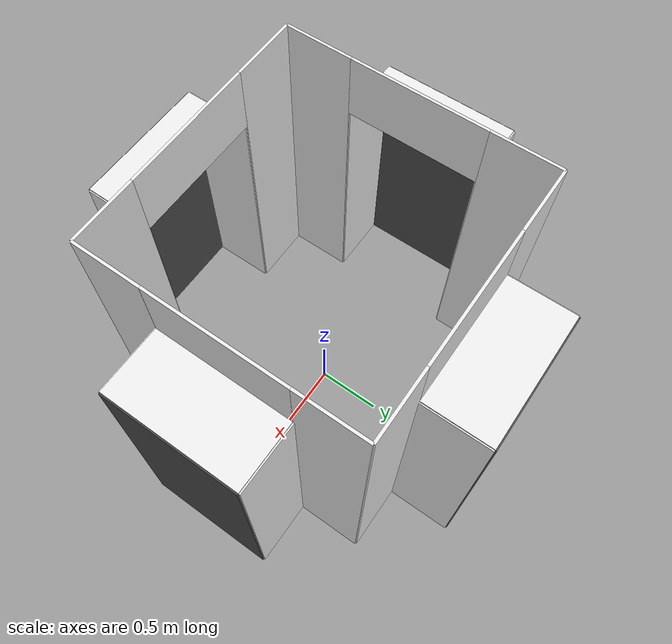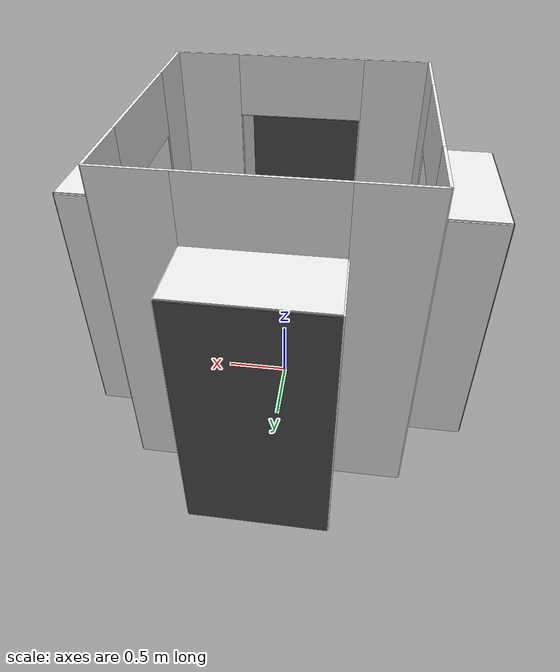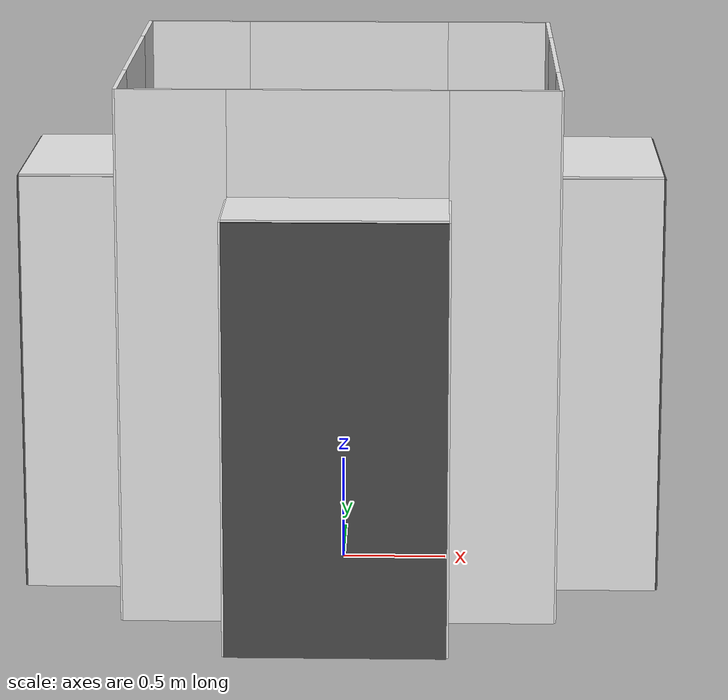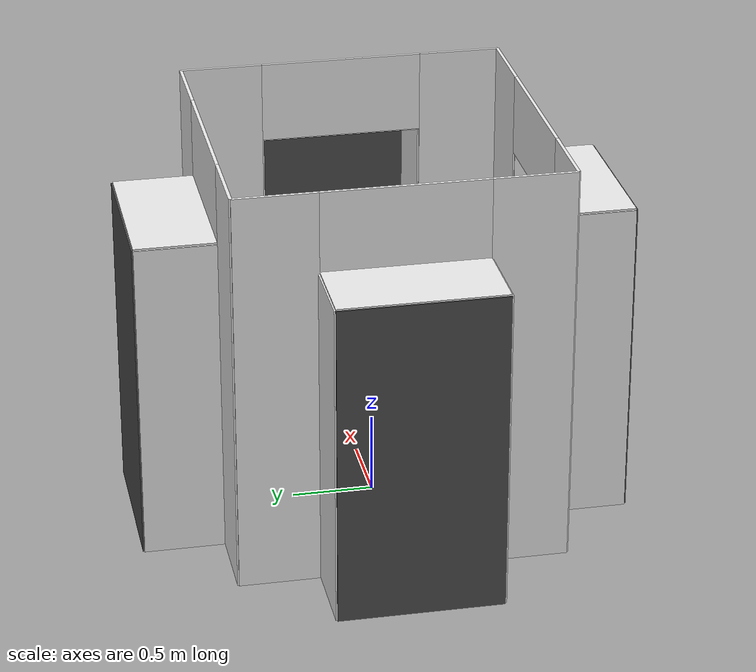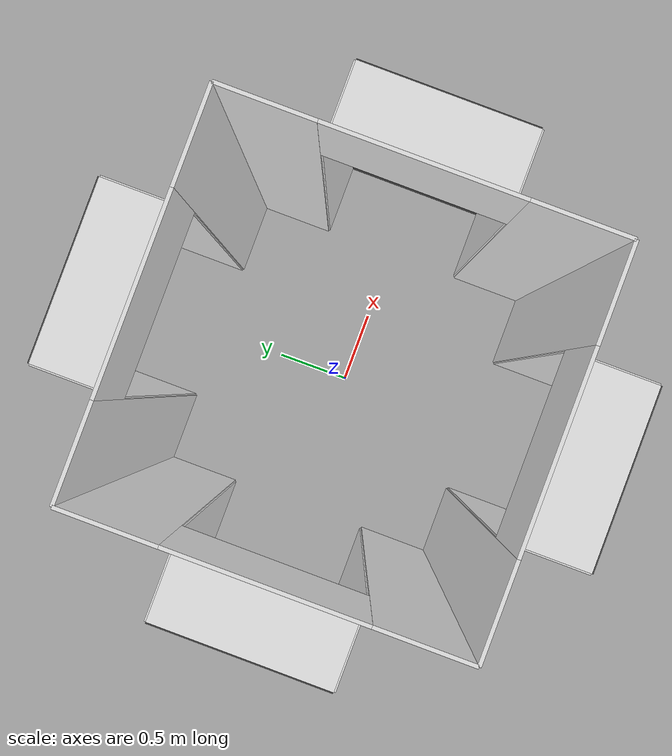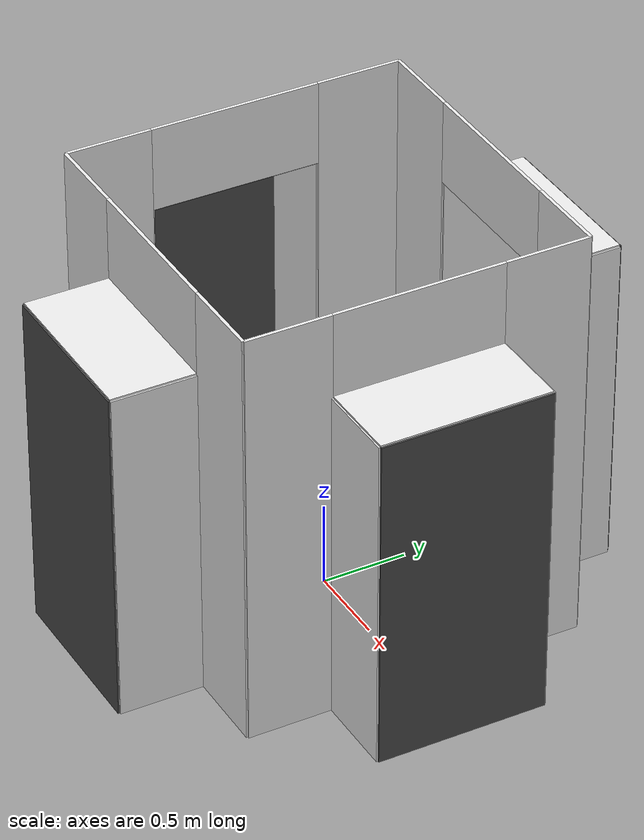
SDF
<?xml version='1.0' encoding='us-ascii'?>
<sdf version='1.6'>
  <world name='default'>
    <gravity>0 0 -9.8</gravity>
    <magnetic_field>6e-06 2.3e-05 -4.2e-05</magnetic_field>
    <atmosphere type='adiabatic'/>
    <physics name='default_physics' default='0' type='ode'>
      <max_step_size>0.001</max_step_size>
      <real_time_factor>1</real_time_factor>
      <real_time_update_rate>1000</real_time_update_rate>
    </physics>
    <scene>
      <ambient>0.4 0.4 0.4 1</ambient>
      <background>0.7 0.7 0.7 1</background>
      <shadows>0</shadows>
    </scene>
    <gui fullscreen='0'>
      <camera name='user_camera'>
        <pose frame=''>0.385465 11.2025 2.48268 0 0.225797 -1.50121</pose>
        <view_controller>orbit</view_controller>
        <projection_type>perspective</projection_type>
      </camera>
    </gui>
    <model name='wall_right_front_left'>
      <static>1</static>
      <pose frame=''>1 0.75 1.25 0 0 1.57</pose>
      <link name='link'>
        <collision name='collision'>
          <geometry>
            <box>
              <size>0.5 0.02 2.5</size>
            </box>
          </geometry>
        </collision>
        <visual name='visual'>
          <material>
            <script>
              <name>Gazebo/White</name>
              <uri>file://media/materials/scripts/gazebo.material</uri>
            </script>
          </material>
          <geometry>
            <box>
              <size>0.5 0.02 2.5</size>
            </box>
          </geometry>
        </visual>
        <self_collide>0</self_collide>
        <kinematic>0</kinematic>
      </link>
    </model>
    <model name='wall_right_front_right'>
      <static>1</static>
      <pose frame=''>1 -0.75 1.25 0 0 1.57</pose>
      <link name='link'>
        <collision name='collision'>
          <geometry>
            <box>
              <size>0.5 0.02 2.5</size>
            </box>
          </geometry>
        </collision>
        <visual name='visual'>
          <material>
            <script>
              <name>Gazebo/White</name>
              <uri>file://media/materials/scripts/gazebo.material</uri>
            </script>
          </material>
          <geometry>
            <box>
              <size>0.5 0.02 2.5</size>
            </box>
          </geometry>
        </visual>
        <self_collide>0</self_collide>
        <kinematic>0</kinematic>
      </link>
    </model>
    <model name='wall_right_front_up'>
      <static>1</static>
      <pose frame=''>1 0 2.25 0 0 1.57</pose>
      <link name='link'>
        <collision name='collision'>
          <geometry>
            <box>
              <size>1 0.02 0.5</size>
            </box>
          </geometry>
        </collision>
        <visual name='visual'>
          <material>
            <script>
              <name>Gazebo/White</name>
              <uri>file://media/materials/scripts/gazebo.material</uri>
            </script>
          </material>
          <geometry>
            <box>
              <size>1 0.02 0.5</size>
            </box>
          </geometry>
        </visual>
        <self_collide>0</self_collide>
        <kinematic>0</kinematic>
      </link>
    </model>
    <model name='wall_right_inside_back'>
      <static>1</static>
      <pose frame=''>1.5 0 1 0 0 1.57</pose>
      <link name='link'>
        <collision name='collision'>
          <geometry>
            <box>
              <size>1 0.02 2</size>
            </box>
          </geometry>
        </collision>
        <visual name='visual'>
          <material>
            <script>
              <name>Gazebo/DarkGrey</name>
              <uri>file://media/materials/scripts/gazebo.material</uri>
            </script>
          </material>
          <geometry>
            <box>
              <size>1 0.02 2</size>
            </box>
          </geometry>
        </visual>
      </link>
    </model>
    <model name='wall_right_inside_left'>
      <static>1</static>
      <pose frame=''>1.25 0.5 1 0 0 0</pose>
      <link name='link'>
        <collision name='collision'>
          <geometry>
            <box>
              <size>0.5 0.02 2</size>
            </box>
          </geometry>
        </collision>
        <visual name='visual'>
          <material>
            <script>
              <name>Gazebo/White</name>
              <uri>file://media/materials/scripts/gazebo.material</uri>
            </script>
          </material>
          <geometry>
            <box>
              <size>0.5 0.02 2</size>
            </box>
          </geometry>
        </visual>
        <self_collide>0</self_collide>
        <kinematic>0</kinematic>
      </link>
    </model>
    <model name='wall_right_inside_right'>
      <static>1</static>
      <pose frame=''>1.25 -0.5 1 0 0 0</pose>
      <link name='link'>
        <collision name='collision'>
          <geometry>
            <box>
              <size>0.5 0.02 2</size>
            </box>
          </geometry>
        </collision>
        <visual name='visual'>
          <material>
            <script>
              <name>Gazebo/White</name>
              <uri>file://media/materials/scripts/gazebo.material</uri>
            </script>
          </material>
          <geometry>
            <box>
              <size>0.5 0.02 2</size>
            </box>
          </geometry>
        </visual>
        <self_collide>0</self_collide>
        <kinematic>0</kinematic>
      </link>
    </model>
    <model name='wall_right_inside_top'>
      <static>1</static>
      <pose frame=''>1.25 0 2 1.57 0 1.57</pose>
      <link name='link'>
        <collision name='collision'>
          <geometry>
            <box>
              <size>1 0.02 0.5</size>
            </box>
          </geometry>
        </collision>
        <visual name='visual'>
          <material>
            <script>
              <name>Gazebo/White</name>
              <uri>file://media/materials/scripts/gazebo.material</uri>
            </script>
          </material>
          <geometry>
            <box>
              <size>1 0.02 0.5</size>
            </box>
          </geometry>
        </visual>
      </link>
    </model>
    <model name='wall_left_front_left'>
      <static>1</static>
      <pose frame=''>-1 0.75 1.25 0 0 1.57</pose>
      <link name='link'>
        <collision name='collision'>
          <geometry>
            <box>
              <size>0.5 0.02 2.5</size>
            </box>
          </geometry>
        </collision>
        <visual name='visual'>
          <material>
            <script>
              <name>Gazebo/White</name>
              <uri>file://media/materials/scripts/gazebo.material</uri>
            </script>
          </material>
          <geometry>
            <box>
              <size>0.5 0.02 2.5</size>
            </box>
          </geometry>
        </visual>
        <self_collide>0</self_collide>
        <kinematic>0</kinematic>
      </link>
    </model>
    <model name='wall_left_front_right'>
      <static>1</static>
      <pose frame=''>-1 -0.75 1.25 0 0 1.57</pose>
      <link name='link'>
        <collision name='collision'>
          <geometry>
            <box>
              <size>0.5 0.02 2.5</size>
            </box>
          </geometry>
        </collision>
        <visual name='visual'>
          <material>
            <script>
              <name>Gazebo/White</name>
              <uri>file://media/materials/scripts/gazebo.material</uri>
            </script>
          </material>
          <geometry>
            <box>
              <size>0.5 0.02 2.5</size>
            </box>
          </geometry>
        </visual>
        <self_collide>0</self_collide>
        <kinematic>0</kinematic>
      </link>
    </model>
    <model name='wall_left_front_up'>
      <static>1</static>
      <pose frame=''>-1 0 2.25 0 0 1.57</pose>
      <link name='link'>
        <collision name='collision'>
          <geometry>
            <box>
              <size>1 0.02 0.5</size>
            </box>
          </geometry>
        </collision>
        <visual name='visual'>
          <material>
            <script>
              <name>Gazebo/White</name>
              <uri>file://media/materials/scripts/gazebo.material</uri>
            </script>
          </material>
          <geometry>
            <box>
              <size>1 0.02 0.5</size>
            </box>
          </geometry>
        </visual>
        <self_collide>0</self_collide>
        <kinematic>0</kinematic>
      </link>
    </model>
    <model name='wall_left_inside_back'>
      <static>1</static>
      <pose frame=''>-1.5 0 1 0 0 1.57</pose>
      <link name='link'>
        <collision name='collision'>
          <geometry>
            <box>
              <size>1 0.02 2</size>
            </box>
          </geometry>
        </collision>
        <visual name='visual'>
          <material>
            <script>
              <name>Gazebo/DarkGrey</name>
              <uri>file://media/materials/scripts/gazebo.material</uri>
            </script>
          </material>
          <geometry>
            <box>
              <size>1 0.02 2</size>
            </box>
          </geometry>
        </visual>
      </link>
    </model>
    <model name='wall_left_inside_left'>
      <static>1</static>
      <pose frame=''>-1.25 0.5 1 0 0 0</pose>
      <link name='link'>
        <collision name='collision'>
          <geometry>
            <box>
              <size>0.5 0.02 2</size>
            </box>
          </geometry>
        </collision>
        <visual name='visual'>
          <material>
            <script>
              <name>Gazebo/White</name>
              <uri>file://media/materials/scripts/gazebo.material</uri>
            </script>
          </material>
          <geometry>
            <box>
              <size>0.5 0.02 2</size>
            </box>
          </geometry>
        </visual>
        <self_collide>0</self_collide>
        <kinematic>0</kinematic>
      </link>
    </model>
    <model name='wall_left_inside_right'>
      <static>1</static>
      <pose frame=''>-1.25 -0.5 1 0 0 0</pose>
      <link name='link'>
        <collision name='collision'>
          <geometry>
            <box>
              <size>0.5 0.02 2</size>
            </box>
          </geometry>
        </collision>
        <visual name='visual'>
          <material>
            <script>
              <name>Gazebo/White</name>
              <uri>file://media/materials/scripts/gazebo.material</uri>
            </script>
          </material>
          <geometry>
            <box>
              <size>0.5 0.02 2</size>
            </box>
          </geometry>
        </visual>
        <self_collide>0</self_collide>
        <kinematic>0</kinematic>
      </link>
    </model>
    <model name='wall_left_inside_top'>
      <static>1</static>
      <pose frame=''>-1.25 0 2 1.57 0 1.57</pose>
      <link name='link'>
        <collision name='collision'>
          <geometry>
            <box>
              <size>1 0.02 0.5</size>
            </box>
          </geometry>
        </collision>
        <visual name='visual'>
          <material>
            <script>
              <name>Gazebo/White</name>
              <uri>file://media/materials/scripts/gazebo.material</uri>
            </script>
          </material>
          <geometry>
            <box>
              <size>1 0.02 0.5</size>
            </box>
          </geometry>
        </visual>
      </link>
    </model>
    <model name='wall_front_front_left'>
      <static>1</static>
      <pose frame=''>-0.75 1 1.25 0 0 0</pose>
      <link name='link'>
        <collision name='collision'>
          <geometry>
            <box>
              <size>0.5 0.02 2.5</size>
            </box>
          </geometry>
        </collision>
        <visual name='visual'>
          <material>
            <script>
              <name>Gazebo/White</name>
              <uri>file://media/materials/scripts/gazebo.material</uri>
            </script>
          </material>
          <geometry>
            <box>
              <size>0.5 0.02 2.5</size>
            </box>
          </geometry>
        </visual>
        <self_collide>0</self_collide>
        <kinematic>0</kinematic>
      </link>
    </model>
    <model name='wall_front_front_right'>
      <static>1</static>
      <pose frame=''>0.75 1 1.25 0 0 0</pose>
      <link name='link'>
        <collision name='collision'>
          <geometry>
            <box>
              <size>0.5 0.02 2.5</size>
            </box>
          </geometry>
        </collision>
        <visual name='visual'>
          <material>
            <script>
              <name>Gazebo/White</name>
              <uri>file://media/materials/scripts/gazebo.material</uri>
            </script>
          </material>
          <geometry>
            <box>
              <size>0.5 0.02 2.5</size>
            </box>
          </geometry>
        </visual>
        <self_collide>0</self_collide>
        <kinematic>0</kinematic>
      </link>
    </model>
    <model name='wall_front_front_up'>
      <static>1</static>
      <pose frame=''>0 1 2.25 0 0 0</pose>
      <link name='link'>
        <collision name='collision'>
          <geometry>
            <box>
              <size>1 0.02 0.5</size>
            </box>
          </geometry>
        </collision>
        <visual name='visual'>
          <material>
            <script>
              <name>Gazebo/White</name>
              <uri>file://media/materials/scripts/gazebo.material</uri>
            </script>
          </material>
          <geometry>
            <box>
              <size>1 0.02 0.5</size>
            </box>
          </geometry>
        </visual>
        <self_collide>0</self_collide>
        <kinematic>0</kinematic>
      </link>
    </model>
    <model name='wall_front_inside_back'>
      <static>1</static>
      <pose frame=''>0 1.5 1 0 0 0</pose>
      <link name='link'>
        <collision name='collision'>
          <geometry>
            <box>
              <size>1 0.02 2</size>
            </box>
          </geometry>
        </collision>
        <visual name='visual'>
          <material>
            <script>
              <name>Gazebo/DarkGrey</name>
              <uri>file://media/materials/scripts/gazebo.material</uri>
            </script>
          </material>
          <geometry>
            <box>
              <size>1 0.02 2</size>
            </box>
          </geometry>
        </visual>
      </link>
    </model>
    <model name='wall_front_inside_left'>
      <static>1</static>
      <pose frame=''>-0.5 1.25 1 0 0 1.57</pose>
      <link name='link'>
        <collision name='collision'>
          <geometry>
            <box>
              <size>0.5 0.02 2</size>
            </box>
          </geometry>
        </collision>
        <visual name='visual'>
          <material>
            <script>
              <name>Gazebo/White</name>
              <uri>file://media/materials/scripts/gazebo.material</uri>
            </script>
          </material>
          <geometry>
            <box>
              <size>0.5 0.02 2</size>
            </box>
          </geometry>
        </visual>
        <self_collide>0</self_collide>
        <kinematic>0</kinematic>
      </link>
    </model>
    <model name='wall_front_inside_right'>
      <static>1</static>
      <pose frame=''>0.5 1.25 1 0 0 1.57</pose>
      <link name='link'>
        <collision name='collision'>
          <geometry>
            <box>
              <size>0.5 0.02 2</size>
            </box>
          </geometry>
        </collision>
        <visual name='visual'>
          <material>
            <script>
              <name>Gazebo/White</name>
              <uri>file://media/materials/scripts/gazebo.material</uri>
            </script>
          </material>
          <geometry>
            <box>
              <size>0.5 0.02 2</size>
            </box>
          </geometry>
        </visual>
        <self_collide>0</self_collide>
        <kinematic>0</kinematic>
      </link>
    </model>
    <model name='wall_front_inside_top'>
      <static>1</static>
      <pose frame=''>0 1.25 2 1.57 0 0</pose>
      <link name='link'>
        <collision name='collision'>
          <geometry>
            <box>
              <size>1 0.02 0.5</size>
            </box>
          </geometry>
        </collision>
        <visual name='visual'>
          <material>
            <script>
              <name>Gazebo/White</name>
              <uri>file://media/materials/scripts/gazebo.material</uri>
            </script>
          </material>
          <geometry>
            <box>
              <size>1 0.02 0.5</size>
            </box>
          </geometry>
        </visual>
      </link>
    </model>
    <model name='wall_back_front_left'>
      <static>1</static>
      <pose frame=''>-0.75 -1 1.25 0 0 0</pose>
      <link name='link'>
        <collision name='collision'>
          <geometry>
            <box>
              <size>0.5 0.02 2.5</size>
            </box>
          </geometry>
        </collision>
        <visual name='visual'>
          <material>
            <script>
              <name>Gazebo/White</name>
              <uri>file://media/materials/scripts/gazebo.material</uri>
            </script>
          </material>
          <geometry>
            <box>
              <size>0.5 0.02 2.5</size>
            </box>
          </geometry>
        </visual>
        <self_collide>0</self_collide>
        <kinematic>0</kinematic>
      </link>
    </model>
    <model name='wall_back_front_right'>
      <static>1</static>
      <pose frame=''>0.75 -1 1.25 0 0 0</pose>
      <link name='link'>
        <collision name='collision'>
          <geometry>
            <box>
              <size>0.5 0.02 2.5</size>
            </box>
          </geometry>
        </collision>
        <visual name='visual'>
          <material>
            <script>
              <name>Gazebo/White</name>
              <uri>file://media/materials/scripts/gazebo.material</uri>
            </script>
          </material>
          <geometry>
            <box>
              <size>0.5 0.02 2.5</size>
            </box>
          </geometry>
        </visual>
        <self_collide>0</self_collide>
        <kinematic>0</kinematic>
      </link>
    </model>
    <model name='wall_back_front_up'>
      <static>1</static>
      <pose frame=''>0 -1 2.25 0 0 0</pose>
      <link name='link'>
        <collision name='collision'>
          <geometry>
            <box>
              <size>1 0.02 0.5</size>
            </box>
          </geometry>
        </collision>
        <visual name='visual'>
          <material>
            <script>
              <name>Gazebo/White</name>
              <uri>file://media/materials/scripts/gazebo.material</uri>
            </script>
          </material>
          <geometry>
            <box>
              <size>1 0.02 0.5</size>
            </box>
          </geometry>
        </visual>
        <self_collide>0</self_collide>
        <kinematic>0</kinematic>
      </link>
    </model>
    <model name='wall_back_inside_back'>
      <static>1</static>
      <pose frame=''>0 -1.5 1 0 0 0</pose>
      <link name='link'>
        <collision name='collision'>
          <geometry>
            <box>
              <size>1 0.02 2</size>
            </box>
          </geometry>
        </collision>
        <visual name='visual'>
          <material>
            <script>
              <name>Gazebo/DarkGrey</name>
              <uri>file://media/materials/scripts/gazebo.material</uri>
            </script>
          </material>
          <geometry>
            <box>
              <size>1 0.02 2</size>
            </box>
          </geometry>
        </visual>
      </link>
    </model>
    <model name='wall_back_inside_left'>
      <static>1</static>
      <pose frame=''>-0.5 -1.25 1 0 0 1.57</pose>
      <link name='link'>
        <collision name='collision'>
          <geometry>
            <box>
              <size>0.5 0.02 2</size>
            </box>
          </geometry>
        </collision>
        <visual name='visual'>
          <material>
            <script>
              <name>Gazebo/White</name>
              <uri>file://media/materials/scripts/gazebo.material</uri>
            </script>
          </material>
          <geometry>
            <box>
              <size>0.5 0.02 2</size>
            </box>
          </geometry>
        </visual>
        <self_collide>0</self_collide>
        <kinematic>0</kinematic>
      </link>
    </model>
    <model name='wall_back_inside_right'>
      <static>1</static>
      <pose frame=''>0.5 -1.25 1 0 0 1.57</pose>
      <link name='link'>
        <collision name='collision'>
          <geometry>
            <box>
              <size>0.5 0.02 2</size>
            </box>
          </geometry>
        </collision>
        <visual name='visual'>
          <material>
            <script>
              <name>Gazebo/White</name>
              <uri>file://media/materials/scripts/gazebo.material</uri>
            </script>
          </material>
          <geometry>
            <box>
              <size>0.5 0.02 2</size>
            </box>
          </geometry>
        </visual>
        <self_collide>0</self_collide>
        <kinematic>0</kinematic>
      </link>
    </model>
    <model name='wall_back_inside_top'>
      <static>1</static>
      <pose frame=''>0 -1.25 2 1.57 0 0</pose>
      <link name='link'>
        <collision name='collision'>
          <geometry>
            <box>
              <size>1 0.02 0.5</size>
            </box>
          </geometry>
        </collision>
        <visual name='visual'>
          <material>
            <script>
              <name>Gazebo/White</name>
              <uri>file://media/materials/scripts/gazebo.material</uri>
            </script>
          </material>
          <geometry>
            <box>
              <size>1 0.02 0.5</size>
            </box>
          </geometry>
        </visual>
      </link>
    </model>
  </world>
</sdf>
